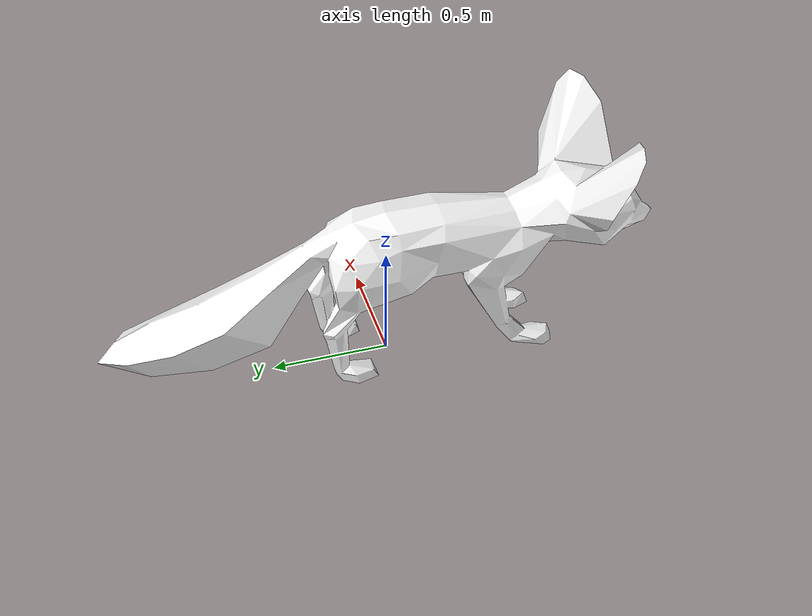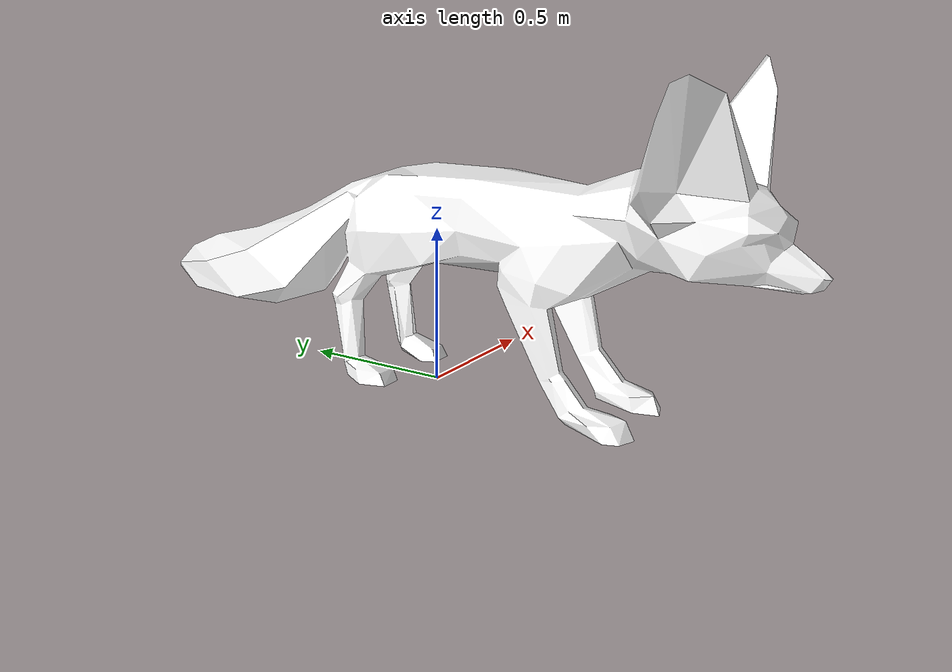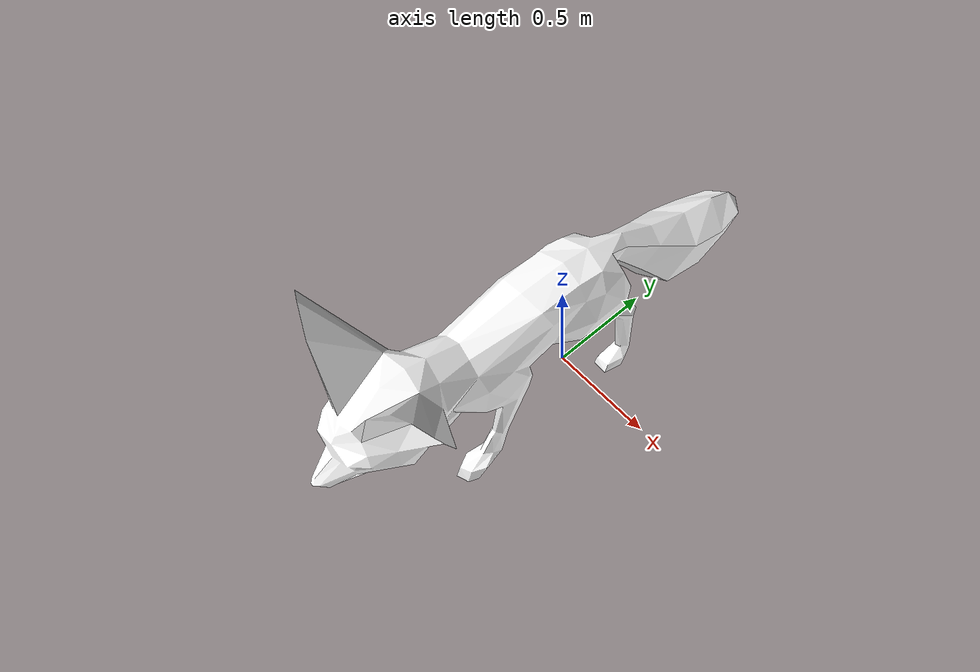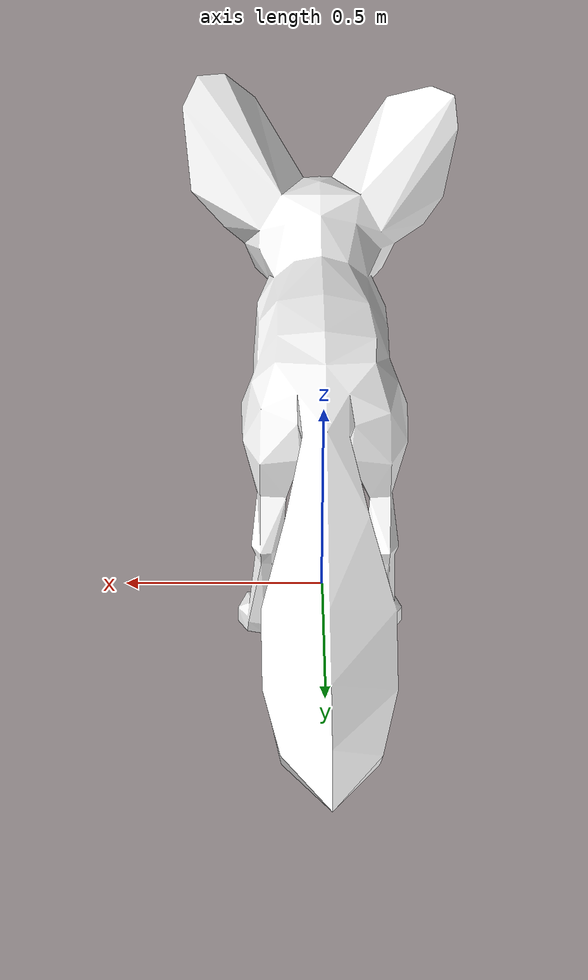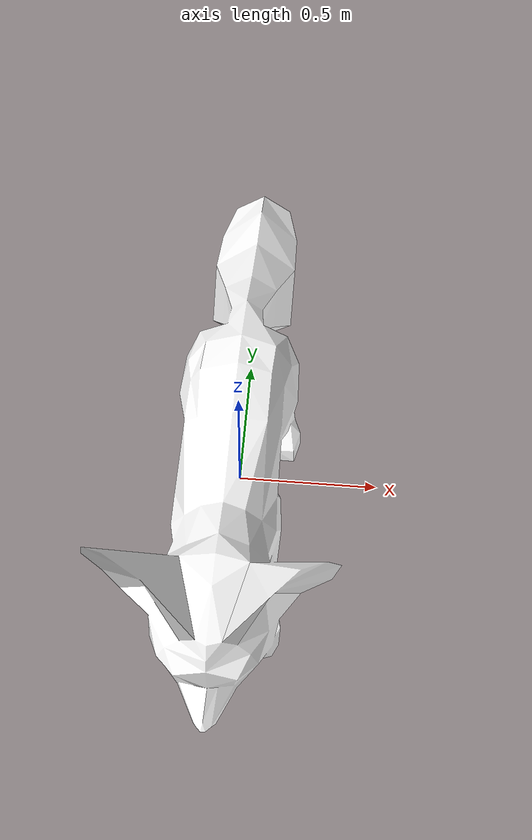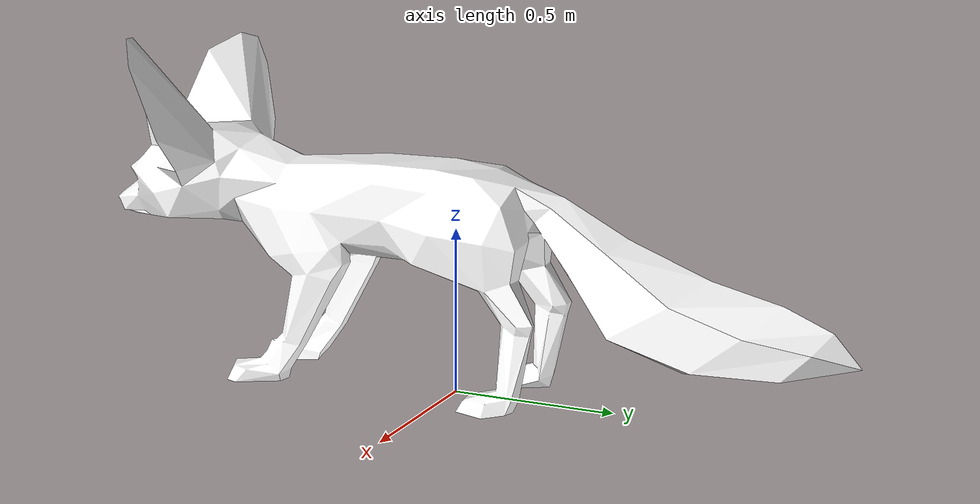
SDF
<?xml version="1.0"?>
<sdf version="1.9">
  <model name="fox_alive">
    <pose>0 0 0 0 0 0</pose>
    <link name="body">
      <inertial>
        <mass>5.0</mass>
        <inertia>
          <ixx>0.1</ixx>
          <iyy>0.1</iyy>
          <izz>0.1</izz>
        </inertia>
      </inertial>

      <collision name="collision">
        <geometry>
          <mesh>
            <filename>file:///home/student/ros2_ws/install/41068_ignition_bringup/share/41068_ignition_bringup/models/fox/veryperfectfoxcolourdae.dae</filename>
            <scale>1.0 1.0 1.0</scale>
          </mesh>
        </geometry>
      </collision>

      <visual name="visual">
        <geometry>
          <mesh>
            <filename>file:///home/student/ros2_ws/install/41068_ignition_bringup/share/41068_ignition_bringup/models/fox/veryperfectfoxcolourdae.dae</filename>
            <scale>1.0 1.0 1.0</scale>
          </mesh>
        </geometry>
        <material>
          <ambient>1.0 1.0 1.0 1</ambient>
          <diffuse>1.0 1.0 1.0 1</diffuse>
          <specular>0.1 0.1 0.1 1</specular>
        </material>
      </visual>
    </link>
  </model>
</sdf>
